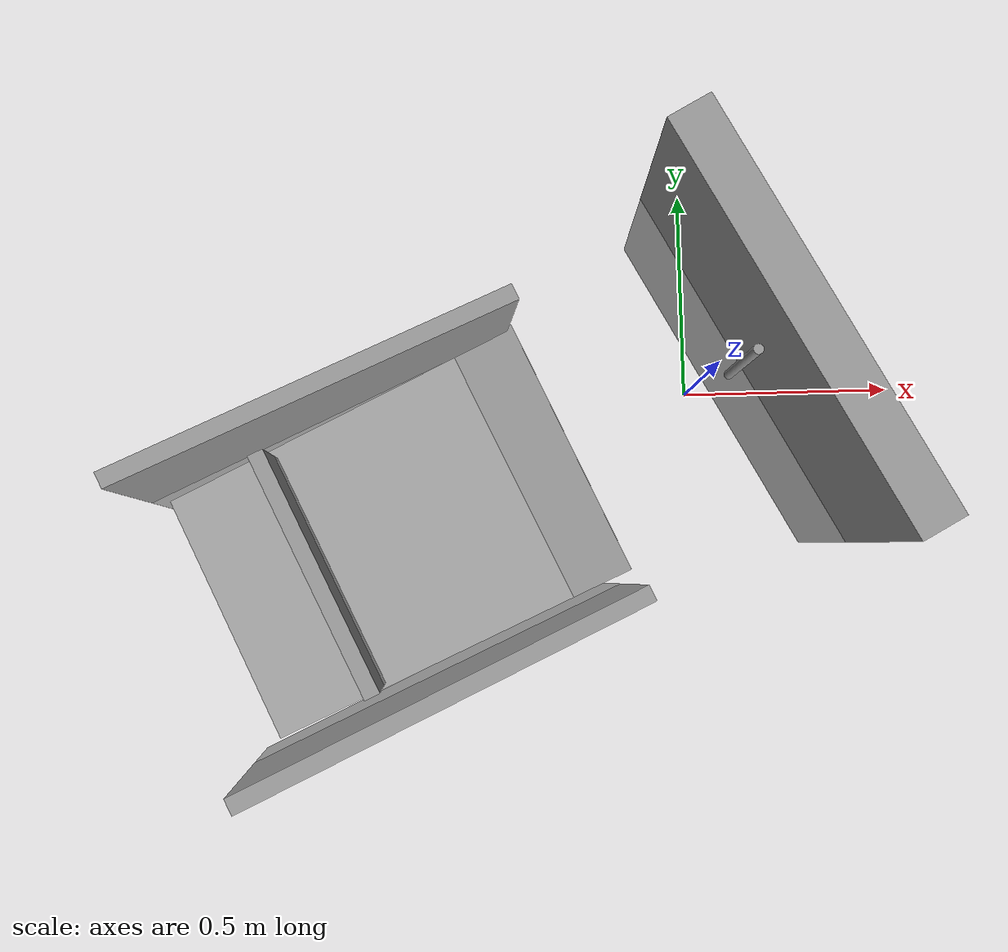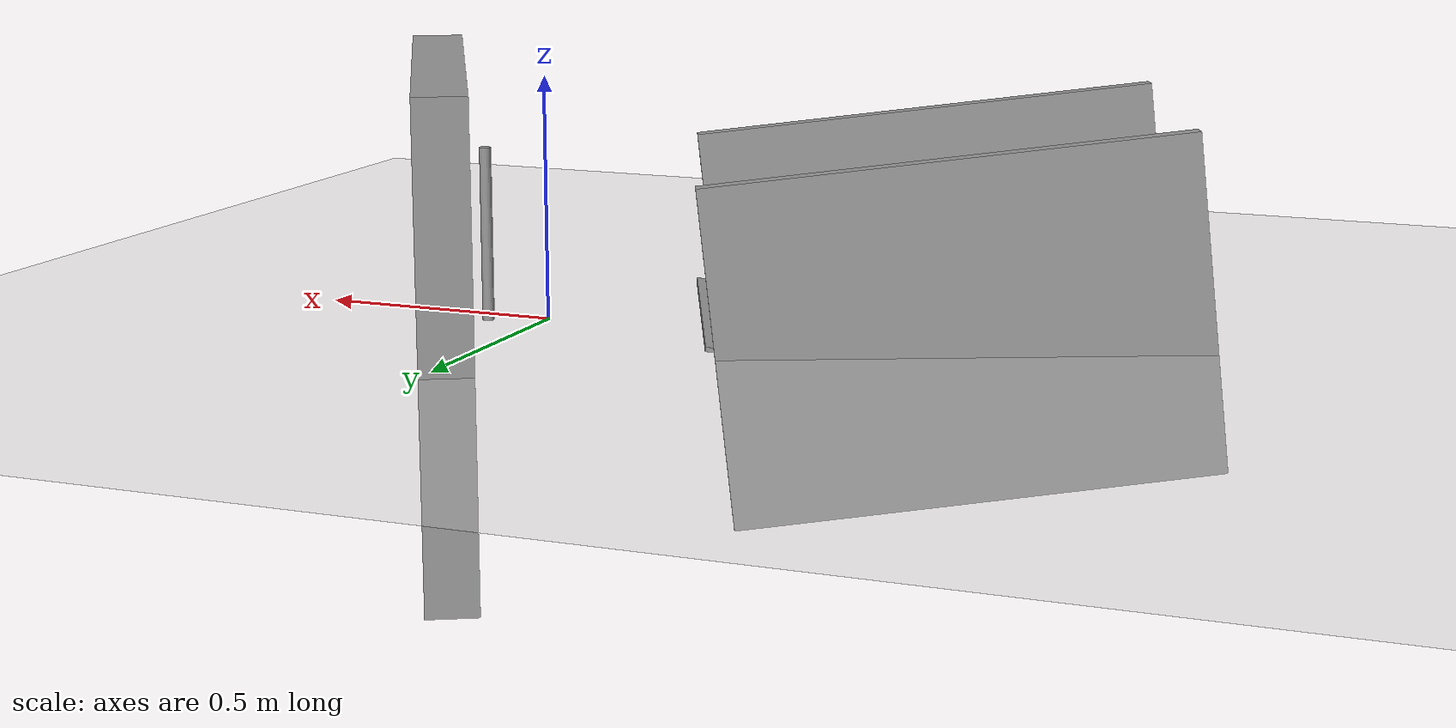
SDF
<sdf version="1.6">
 <world name="default">
  <light name="sun" type="directional">
   <pose>0 0 10 0 -0 0</pose>
   <diffuse>0.8 0.8 0.8 1</diffuse>
   <specular>0.2 0.2 0.2 1</specular>
   <attenuation>
    <range>1000</range>
    <constant>0.9</constant>
    <linear>0.01</linear>
    <quadratic>0.001</quadratic>
   </attenuation>
   <direction>-0.5 0.1 -0.9</direction>
  </light>
  <model name="ground_plane">
   <static>1</static>
   <link name="link">
    <collision name="collision">
     <geometry><plane><normal>0 0 1</normal><size>100 100</size></plane></geometry>
     <surface><friction><ode><mu>100</mu><mu2>50</mu2></ode></friction></surface>
    </collision>
    <visual name="visual">
     <cast_shadows>0</cast_shadows>
     <geometry><plane><normal>0 0 1</normal><size>100 100</size></plane></geometry>
     <material>
      <script><uri>file://media/materials/scripts/gazebo.material</uri><name>Gazebo/Grey</name></script>
     </material>
    </visual>
   </link>
  </model>
  <gravity>0 0 -9.8</gravity>
  <magnetic_field>6e-06 2.3e-05 -4.2e-05</magnetic_field>
  <atmosphere type="adiabatic"/>
  <physics name="default_physics" default="0" type="ode">
   <max_step_size>0.001</max_step_size>
   <real_time_factor>1</real_time_factor>
   <real_time_update_rate>1000</real_time_update_rate>
  </physics>
  <scene><ambient>0.4 0.4 0.4 1</ambient><background>0.7 0.7 0.7 1</background><shadows>1</shadows></scene>
  <spherical_coordinates>
   <surface_model>EARTH_WGS84</surface_model>
   <latitude_deg>0</latitude_deg>
   <longitude_deg>0</longitude_deg>
   <elevation>0</elevation>
   <heading_deg>0</heading_deg>
  </spherical_coordinates>
  <model name="drc_practice_blue_cylinder3">
   <link name="link_0">
    <inertial>
     <mass>0.000199303</mass>
     <inertia>
      <ixx>2.11638e-06</ixx>
      <ixy>0</ixy>
      <ixz>0</ixz>
      <iyy>2.11638e-06</iyy>
      <iyz>0</iyz>
      <izz>1.3954e-08</izz>
     </inertia>
    </inertial>
    <pose>0.61233 0.041939 0.220416 0 -0 0</pose>
    <visual name="visual">
     <geometry><cylinder><radius>0.0118334</radius><length>0.35638</length></cylinder></geometry>
     <material>
      <lighting>1</lighting>
      <script><uri>file://media/materials/scripts/gazebo.material</uri><name>Gazebo/Grey</name></script>
      <shader type="pixel"/>
     </material>
    </visual>
    <collision name="collision">
     <geometry><cylinder><radius>0.011833</radius><length>0.35638</length></cylinder></geometry>
     <surface>
      <friction>
       <ode><mu>1</mu><mu2>1</mu2><fdir1>0 0 0</fdir1><slip1>0</slip1><slip2>0</slip2></ode>
       <torsional>
        <coefficient>1</coefficient>
        <patch_radius>0</patch_radius>
        <surface_radius>0</surface_radius>
        <use_patch_radius>1</use_patch_radius>
        <ode><slip>0</slip></ode>
       </torsional>
      </friction>
      <bounce><restitution_coefficient>0</restitution_coefficient><threshold>1e+06</threshold></bounce>
      <contact>
       <collide_without_contact>0</collide_without_contact>
       <collide_without_contact_bitmask>1</collide_without_contact_bitmask>
       <collide_bitmask>1</collide_bitmask>
       <ode>
        <soft_cfm>0</soft_cfm>
        <soft_erp>0.2</soft_erp>
        <kp>1e+13</kp>
        <kd>1</kd>
        <max_vel>0.01</max_vel>
        <min_depth>0</min_depth>
       </ode>
       <bullet>
        <split_impulse>1</split_impulse>
        <split_impulse_penetration_threshold>-0.01</split_impulse_penetration_threshold>
        <soft_cfm>0</soft_cfm>
        <soft_erp>0.2</soft_erp>
        <kp>1e+13</kp>
        <kd>1</kd>
       </bullet>
      </contact>
     </surface>
    </collision>
   </link>
   <static>0</static>
   <pose>-0.500005 0.007796 -0.042224 -3e-06 3e-06 -0.00053</pose>
  </model>
  <model name="unit_box2">
   <link name="link">
    <inertial>
     <mass>0.00599606</mass>
     <inertia>
      <ixx>0.00022859</ixx>
      <ixy>0</ixy>
      <ixz>0</ixz>
      <iyy>0.000488235</iyy>
      <iyz>0</iyz>
      <izz>0.000716744</izz>
     </inertia>
    </inertial>
    <pose>0.027897 -0.503143 -0.607822 0 -0.200538 0.88166</pose>
    <visual name="visual">
     <geometry><box><size>0.988449 0.676313 0.008969</size></box></geometry>
     <material>
      <script><name>Gazebo/Grey</name><uri>file://media/materials/scripts/gazebo.material</uri></script>
      <shader type="pixel"/>
     </material>
    </visual>
    <collision name="collision">
     <geometry><box><size>0.988449 0.676313 0.008969</size></box></geometry>
     <surface>
      <friction>
       <ode><mu>1</mu><mu2>1</mu2><fdir1>0 0 0</fdir1><slip1>0</slip1><slip2>0</slip2></ode>
       <torsional>
        <coefficient>1</coefficient>
        <patch_radius>0</patch_radius>
        <surface_radius>0</surface_radius>
        <use_patch_radius>1</use_patch_radius>
        <ode><slip>0</slip></ode>
       </torsional>
      </friction>
      <bounce><restitution_coefficient>0</restitution_coefficient><threshold>1e+06</threshold></bounce>
      <contact>
       <collide_without_contact>0</collide_without_contact>
       <collide_without_contact_bitmask>1</collide_without_contact_bitmask>
       <collide_bitmask>1</collide_bitmask>
       <ode>
        <soft_cfm>0</soft_cfm>
        <soft_erp>0.2</soft_erp>
        <kp>1e+13</kp>
        <kd>1</kd>
        <max_vel>0.01</max_vel>
        <min_depth>0</min_depth>
       </ode>
       <bullet>
        <split_impulse>1</split_impulse>
        <split_impulse_penetration_threshold>-0.01</split_impulse_penetration_threshold>
        <soft_cfm>0</soft_cfm>
        <soft_erp>0.2</soft_erp>
        <kp>1e+13</kp>
        <kd>1</kd>
       </bullet>
      </contact>
     </surface>
    </collision>
   </link>
   <link name="link_clone">
    <inertial>
     <mass>0.0261743</mass>
     <inertia>
      <ixx>0.00100101</ixx>
      <ixy>0</ixy>
      <ixz>0</ixz>
      <iyy>0.00213788</iyy>
      <iyz>0</iyz>
      <izz>0.00313222</izz>
     </inertia>
    </inertial>
    <pose>0.289456 -0.780611 -0.520484 -1.55301 0.031135 0.881657</pose>
    <visual name="visual">
     <geometry><box><size>0.989248 0.676313 0.03912</size></box></geometry>
     <material>
      <script><name>Gazebo/Grey</name><uri>file://media/materials/scripts/gazebo.material</uri></script>
      <shader type="pixel"/>
     </material>
    </visual>
    <collision name="collision">
     <geometry><box><size>0.989248 0.676313 0.03912</size></box></geometry>
     <surface>
      <friction>
       <ode><mu>1</mu><mu2>1</mu2><fdir1>0 0 0</fdir1><slip1>0</slip1><slip2>0</slip2></ode>
       <torsional>
        <coefficient>1</coefficient>
        <patch_radius>0</patch_radius>
        <surface_radius>0</surface_radius>
        <use_patch_radius>1</use_patch_radius>
        <ode><slip>0</slip></ode>
       </torsional>
      </friction>
      <bounce><restitution_coefficient>0</restitution_coefficient><threshold>1e+06</threshold></bounce>
      <contact>
       <collide_without_contact>0</collide_without_contact>
       <collide_without_contact_bitmask>1</collide_without_contact_bitmask>
       <collide_bitmask>1</collide_bitmask>
       <ode>
        <soft_cfm>0</soft_cfm>
        <soft_erp>0.2</soft_erp>
        <kp>1e+13</kp>
        <kd>1</kd>
        <max_vel>0.01</max_vel>
        <min_depth>0</min_depth>
       </ode>
       <bullet>
        <split_impulse>1</split_impulse>
        <split_impulse_penetration_threshold>-0.01</split_impulse_penetration_threshold>
        <soft_cfm>0</soft_cfm>
        <soft_erp>0.2</soft_erp>
        <kp>1e+13</kp>
        <kd>1</kd>
       </bullet>
      </contact>
     </surface>
    </collision>
   </link>
   <link name="link_clone_clone">
    <inertial>
     <mass>0.0256922</mass>
     <inertia>
      <ixx>0.000982576</ixx>
      <ixy>0</ixy>
      <ixz>0</ixz>
      <iyy>0.002022</iyy>
      <iyz>0</iyz>
      <izz>0.00299802</izz>
     </inertia>
    </inertial>
    <pose>-0.250902 -0.296179 -0.515431 -1.55302 0.031143 0.881657</pose>
    <visual name="visual">
     <geometry><box><size>0.971021 0.676313 0.03912</size></box></geometry>
     <material>
      <script><name>Gazebo/Grey</name><uri>file://media/materials/scripts/gazebo.material</uri></script>
      <shader type="pixel"/>
     </material>
    </visual>
    <collision name="collision">
     <geometry><box><size>0.971021 0.676313 0.03912</size></box></geometry>
     <surface>
      <friction>
       <ode><mu>1</mu><mu2>1</mu2><fdir1>0 0 0</fdir1><slip1>0</slip1><slip2>0</slip2></ode>
       <torsional>
        <coefficient>1</coefficient>
        <patch_radius>0</patch_radius>
        <surface_radius>0</surface_radius>
        <use_patch_radius>1</use_patch_radius>
        <ode><slip>0</slip></ode>
       </torsional>
      </friction>
      <bounce><restitution_coefficient>0</restitution_coefficient><threshold>1e+06</threshold></bounce>
      <contact>
       <collide_without_contact>0</collide_without_contact>
       <collide_without_contact_bitmask>1</collide_without_contact_bitmask>
       <collide_bitmask>1</collide_bitmask>
       <ode>
        <soft_cfm>0</soft_cfm>
        <soft_erp>0.2</soft_erp>
        <kp>1e+13</kp>
        <kd>1</kd>
        <max_vel>0.01</max_vel>
        <min_depth>0</min_depth>
       </ode>
       <bullet>
        <split_impulse>1</split_impulse>
        <split_impulse_penetration_threshold>-0.01</split_impulse_penetration_threshold>
        <soft_cfm>0</soft_cfm>
        <soft_erp>0.2</soft_erp>
        <kp>1e+13</kp>
        <kd>1</kd>
       </bullet>
      </contact>
     </surface>
    </collision>
   </link>
   <link name="link_clone_clone_0">
    <inertial>
     <mass>0.00559645</mass>
     <inertia>
      <ixx>2.48669e-05</ixx>
      <ixy>0</ixy>
      <ixz>0</ixz>
      <iyy>0.000184991</iyy>
      <iyz>0</iyz>
      <izz>0.00020843</izz>
     </inertia>
    </inertial>
    <pose>-0.090467 -0.668826 -0.518993 -1.56788 0.014157 -0.684748</pose>
    <visual name="visual">
     <geometry><box><size>0.628593 0.227573 0.03912</size></box></geometry>
     <material>
      <script><name>Gazebo/Grey</name><uri>file://media/materials/scripts/gazebo.material</uri></script>
      <shader type="pixel"/>
     </material>
    </visual>
    <collision name="collision">
     <geometry><box><size>0.628593 0.227573 0.03912</size></box></geometry>
     <surface>
      <friction>
       <ode><mu>1</mu><mu2>1</mu2><fdir1>0 0 0</fdir1><slip1>0</slip1><slip2>0</slip2></ode>
       <torsional>
        <coefficient>1</coefficient>
        <patch_radius>0</patch_radius>
        <surface_radius>0</surface_radius>
        <use_patch_radius>1</use_patch_radius>
        <ode><slip>0</slip></ode>
       </torsional>
      </friction>
      <bounce><restitution_coefficient>0</restitution_coefficient><threshold>1e+06</threshold></bounce>
      <contact>
       <collide_without_contact>0</collide_without_contact>
       <collide_without_contact_bitmask>1</collide_without_contact_bitmask>
       <collide_bitmask>1</collide_bitmask>
       <ode>
        <soft_cfm>0</soft_cfm>
        <soft_erp>0.2</soft_erp>
        <kp>1e+13</kp>
        <kd>1</kd>
        <max_vel>0.01</max_vel>
        <min_depth>0</min_depth>
       </ode>
       <bullet>
        <split_impulse>1</split_impulse>
        <split_impulse_penetration_threshold>-0.01</split_impulse_penetration_threshold>
        <soft_cfm>0</soft_cfm>
        <soft_erp>0.2</soft_erp>
        <kp>1e+13</kp>
        <kd>1</kd>
       </bullet>
      </contact>
     </surface>
    </collision>
   </link>
   <static>1</static>
   <pose>-0.496824 0.159125 0.529947 -0.057603 0.048827 -0.456711</pose>
  </model>
  <model name="unit_box23">
   <link name="link">
    <inertial>
     <mass>1</mass>
     <inertia>
      <ixx>0.166667</ixx>
      <ixy>0</ixy>
      <ixz>0</ixz>
      <iyy>0.166667</iyy>
      <iyz>0</iyz>
      <izz>0.166667</izz>
     </inertia>
    </inertial>
    <visual name="visual">
     <geometry><box><size>0.106223 1 1</size></box></geometry>
     <material>
      <script><name>Gazebo/Grey</name><uri>file://media/materials/scripts/gazebo.material</uri></script>
      <shader type="pixel"/>
     </material>
    </visual>
    <collision name="collision">
     <geometry><box><size>0.106223 1 1</size></box></geometry>
     <surface>
      <friction>
       <ode><mu>1</mu><mu2>1</mu2><fdir1>0 0 0</fdir1><slip1>0</slip1><slip2>0</slip2></ode>
       <torsional>
        <coefficient>1</coefficient>
        <patch_radius>0</patch_radius>
        <surface_radius>0</surface_radius>
        <use_patch_radius>1</use_patch_radius>
        <ode><slip>0</slip></ode>
       </torsional>
      </friction>
      <bounce><restitution_coefficient>0</restitution_coefficient><threshold>1e+06</threshold></bounce>
      <contact>
       <collide_without_contact>0</collide_without_contact>
       <collide_without_contact_bitmask>1</collide_without_contact_bitmask>
       <collide_bitmask>1</collide_bitmask>
       <ode>
        <soft_cfm>0</soft_cfm>
        <soft_erp>0.2</soft_erp>
        <kp>1e+13</kp>
        <kd>1</kd>
        <max_vel>0.01</max_vel>
        <min_depth>0</min_depth>
       </ode>
       <bullet>
        <split_impulse>1</split_impulse>
        <split_impulse_penetration_threshold>-0.01</split_impulse_penetration_threshold>
        <soft_cfm>0</soft_cfm>
        <soft_erp>0.2</soft_erp>
        <kp>1e+13</kp>
        <kd>1</kd>
       </bullet>
      </contact>
     </surface>
    </collision>
   </link>
   <static>1</static>
   <pose>0.192685 0.088488 0.027277 6e-06 0.000688 0.497103</pose>
  </model>
 </world>
</sdf>
